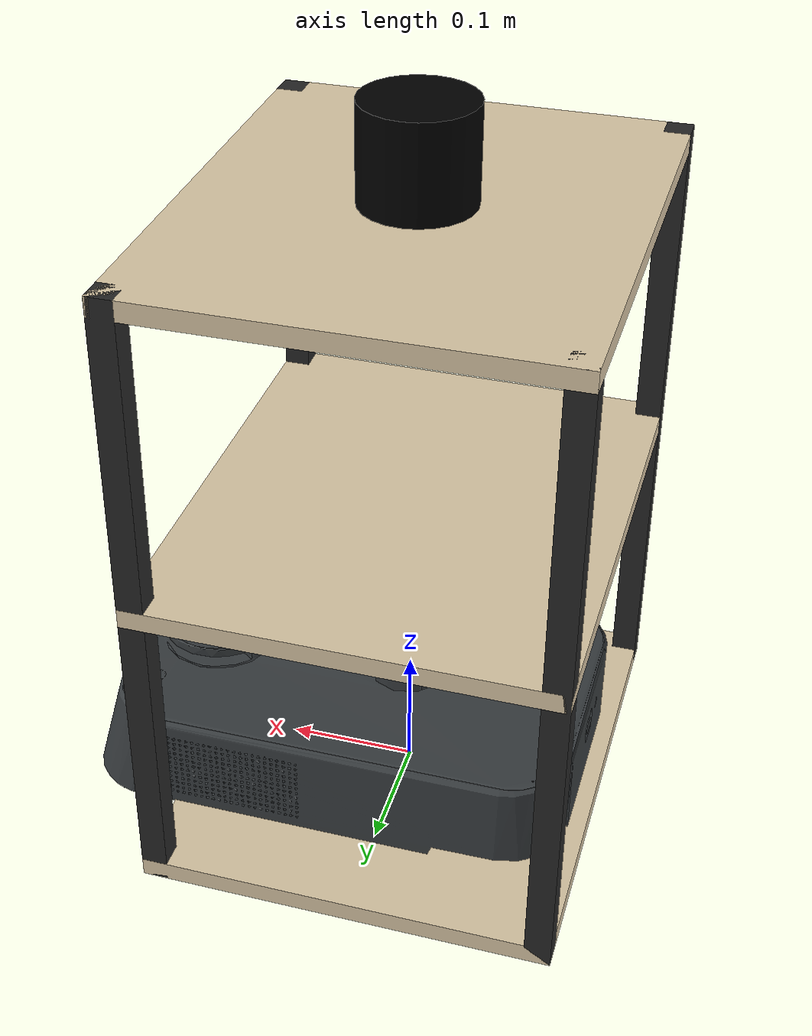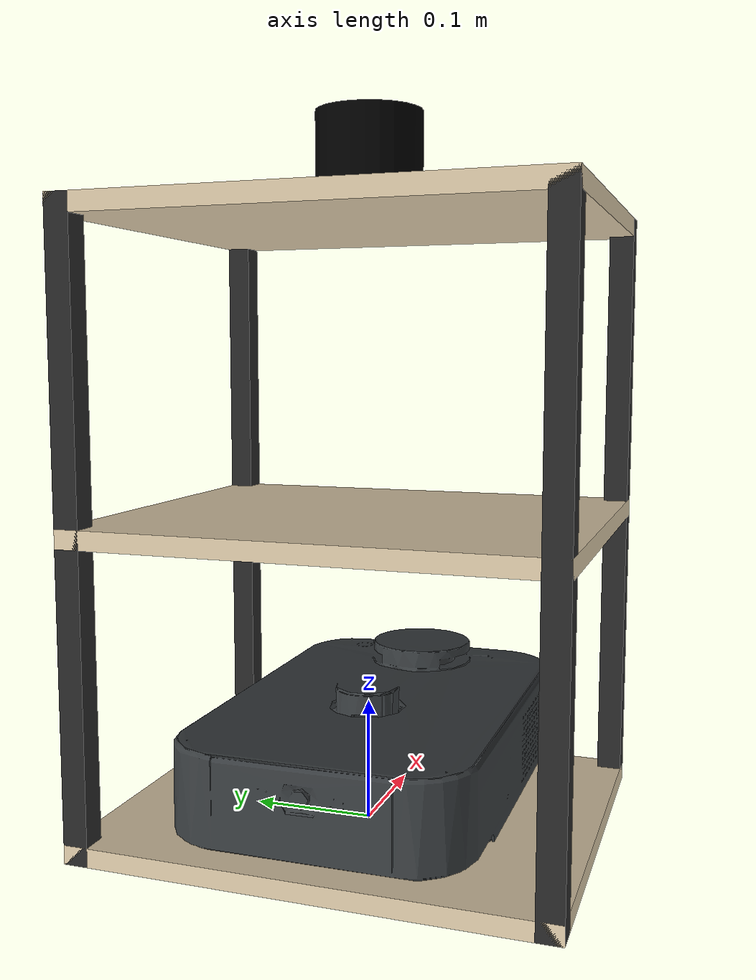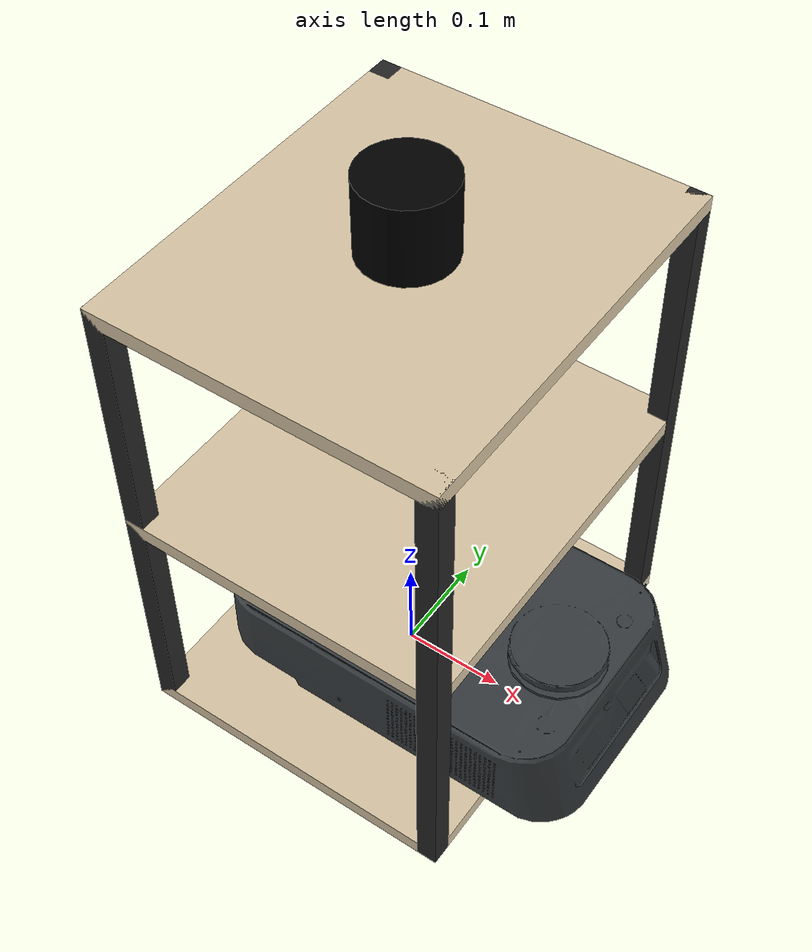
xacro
<?xml version="1.0"?>
<robot name="kachaka_with_shelf" xmlns:xacro="http://ros.org/wiki/xacro">

  <xacro:include filename="$(find kachaka_description)/urdf/_materials.urdf.xacro"/>
  <xacro:include filename="$(find kachaka_description)/urdf/_values.urdf.xacro"/>
  <xacro:include filename="$(find kachaka_description)/urdf/_kachaka.urdf.xacro"/>
  <xacro:include filename="$(find kachaka_description)/urdf/_shelf_3tier.urdf.xacro"/>
  <xacro:include filename="$(find kachaka_autoware_description)/urdf/_ouster_os1.urdf.xacro"/>

  <link name="base_footprint"/>

  <xacro:kachaka_robot parent="base_footprint">
    <origin xyz="0 0 0" rpy="0 0 0"/>
  </xacro:kachaka_robot>

  <!--
    docking_link is Kachaka's docking lift mechanism (prismatic joint).
    Attaching the shelf here makes it follow the lift (up to ~0.012 m),
    matching real hardware behavior.
  -->
  <xacro:shelf_3tier parent="docking_link"/>

  <!-- Mount the Ouster OS-1 at the shelf top center; override origin with values measured in M0 Task 4. -->
  <xacro:ouster_os1 parent="shelf_top">
    <origin xyz="0 0 0" rpy="0 0 0"/>
  </xacro:ouster_os1>

</robot>

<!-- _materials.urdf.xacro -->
<robot xmlns:xacro="http://ros.org/wiki/xacro">
  <material name="body">
    <color rgba="0.2175 0.2355 0.246 1.0" />
  </material>
  <material name="tire">
    <color rgba="0.3 0.3 0.3 1.0" />
  </material>
  <material name="black">
    <color rgba="0.0 0.0 0.0 1.0" />
  </material>
  <material name="shelf_board">
    <color rgba="0.85 0.78 0.65 1.0" />
  </material>
  <material name="shelf_post">
    <color rgba="0.15 0.15 0.15 1.0" />
  </material>
</robot>

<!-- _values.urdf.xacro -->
<robot xmlns:xacro="http://ros.org/wiki/xacro">
    <xacro:property name="PI"
                    value="3.141592653589793" />
</robot>

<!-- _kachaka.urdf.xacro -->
<robot name="kachaka_robot" xmlns:xacro="http://ros.org/wiki/xacro">
  <xacro:macro name="kachaka_robot" params="parent *origin">
    <!-- base_footprint -->
    <joint name="base_footprint_joint"
          type="fixed">
      <parent link="${parent}" />
      <child link="base_link" />
      <xacro:insert_block name="origin" />
    </joint>
    <link name="base_link">
      <inertial>
        <mass value="10.0" />
        <origin xyz="0.0435 0.0 0.0475"
                rpy="0 0 0" />
        <inertia ixx="${1/12*10*(0.095**2+0.240**2)}" ixy="0" ixz="0"
                iyy="${1/12*10*(0.095**2+0.387**2)}" iyz="0"
                izz="${1/12*10*(0.387**2+0.240**2)}" />
      </inertial>
      <visual>
        <origin rpy="0 0 0" xyz="-0.150 -0.120 0.0"/>
        <geometry>
          <mesh filename="package://kachaka_description/meshes/kachaka/body.stl"/>
        </geometry>
        <material name="body" />
      </visual>
      <collision>
        <origin xyz="0.0435 0.0 0.0475"
                rpy="0 0 0" />
        <geometry>
          <box size="0.387 0.240 0.095" />
        </geometry>
        <material name="body" />
      </collision>
    </link>

    <!-- Wheel(right) -->
    <joint name="base_r_drive_wheel_joint"
          type="continuous">
      <parent link="base_link" />
      <child link="base_r_drive_wheel_link" />
      <origin rpy="0 0 0"
              xyz="0.0 -0.100 0.045" />
      <axis xyz="0 1 0" />
      <limit velocity="10"
            effort="100" />
    </joint>
    <link name="base_r_drive_wheel_link">
      <inertial>
        <mass value="0.2" /> <!-- TODO - Update mass value -->
        <origin xyz="0 0 0"
                rpy="${PI / 2.0} 0 0" />
        <!-- Bug - inertial rotation is not reflected in Rviz2 -->
        <!-- https://github.com/ros2/rviz/pull/1316 -->
        <inertia ixx="${1/12*0.2*(3*0.045**2+0.025**2)}" ixy="0" ixz="0"
                iyy="${1/12*0.2*(3*0.045**2+0.025**2)}" iyz="0"
                izz="${1/2*0.2*(0.045**2)}" />
      </inertial>
      <visual>
        <origin rpy="0 0 0" xyz="0 0 0"/>
        <geometry>
          <mesh filename="package://kachaka_description/meshes/kachaka/right_tire.stl" scale="1.0 1.0 1.0"/>
        </geometry>
        <material name="tire" />
      </visual>
      <collision>
        <origin xyz="0 0 0"
                rpy="${PI / 2.0} 0 0" />
        <geometry>
          <cylinder length="0.025"
                    radius="0.045" />
        </geometry>
        <material name="tire" />
      </collision>
    </link>

    <!-- Wheel(left) -->
    <joint name="base_l_drive_wheel_joint"
          type="continuous">
      <parent link="base_link" />
      <child link="base_l_drive_wheel_link" />
      <origin rpy="0 0 0"
              xyz="0.0 0.100 0.045" />
      <axis xyz="0 1 0" />
      <limit velocity="10"
            effort="100" />
    </joint>
    <link name="base_l_drive_wheel_link">
      <inertial>
        <mass value="0.2" />
        <origin xyz="0 0 0"
                rpy="${PI / 2.0} 0 0" />
        <!-- Bug - inertial rotation is not reflected in Rviz2 -->
        <!-- https://github.com/ros2/rviz/pull/1316 -->
        <inertia ixx="${1/12*0.2*(3*0.045**2+0.025**2)}" ixy="0" ixz="0"
                iyy="${1/12*0.2*(3*0.045**2+0.025**2)}" iyz="0"
                izz="${1/2*0.2*(0.045**2)}" />
      </inertial>
      <visual>
        <origin xyz="0 0 0"
                rpy="0 0 0" />
        <geometry>
          <mesh filename="package://kachaka_description/meshes/kachaka/left_tire.stl" scale="1.0 1.0 1.0"/>
        </geometry>
        <material name="tire" />
      </visual>
      <collision>
        <origin xyz="0 0 0"
                rpy="${PI / 2.0} 0 0" />
        <geometry>
          <cylinder length="0.025"
                    radius="0.045" />
        </geometry>
        <material name="tire" />
      </collision>
    </link>

    <!-- 2D LiDAR -->
    <joint name="lidar_joint"
          type="fixed">
      <parent link="base_link" />
      <child link="laser_link" />
      <origin rpy="0 0 ${PI / 2.0}"
              xyz="0.156 0 0.1049" />
    </joint>
    <link name="laser_link" />

    <!-- Camera(front) -->
    <joint name="camera_front_joint"
          type="fixed">
      <parent link="base_link" />
      <child link="camera_front_link" />
      <origin rpy="-${PI / 2.0} 0 -${PI / 2.0}"
              xyz="${0.2196 - 0.01} 0 0.070" />
    </joint>
    <link name="camera_front_link" />

    <!-- Camera(back) -->
    <joint name="camera_back_joint"
          type="fixed">
      <parent link="base_link" />
      <child link="camera_back_link" />
      <origin rpy="-${PI / 2.0} 0 ${PI / 2.0}"
              xyz="${-0.150 + 0.01} 0 0.070" />
    </joint>
    <link name="camera_back_link" />

    <!-- ToF camera -->
    <joint name="tof_joint"
          type="fixed">
      <parent link="base_link" />
      <child link="tof_link" />
      <origin rpy="-${PI / 4.0} 0 -${PI / 2.0}"
              xyz="0.221 0.0 0.0418" />
    </joint>
    <link name="tof_link" />

    <!-- Docking -->
    <joint name="docking_joint"
          type="prismatic">
      <parent link="base_link" />
      <child link="docking_link" />
      <axis xyz="0 0 1.0" />
      <origin rpy="0 0 0"
              xyz="0 0 0" />
      <limit lower="0.0"
            upper="0.012"
            effort="1.0"
            velocity="1.0" />
    </joint>
    <link name="docking_link">
      <inertial>
        <mass value="0.2" /> <!-- TODO - Update mass value -->
        <origin xyz="0 0 0.1075"
                rpy="0 0 0" />
        <inertia ixx="${1/12*0.2*(3*0.025**2+0.015**2)}" ixy="0" ixz="0"
                 iyy="${1/12*0.2*(3*0.025**2+0.015**2)}" iyz="0"
                 izz="${1/2*0.2*(0.025**2)}" />
      </inertial>
      <visual>
        <geometry>
          <mesh filename="package://kachaka_description/meshes/kachaka/solenoid.stl"
                scale="1.0 1.0 1.0" />
        </geometry>
        <material name="body" />
      </visual>
      <collision>
        <origin xyz="0 0 0.1075"
                rpy="0 0 0" />
        <geometry>
          <cylinder length="0.015"
                    radius="0.025" />
        </geometry>
        <material name="body" />
      </collision>
    </link>

    <!-- IMU -->
    <joint name="imu_joint"
          type="fixed">
      <parent link="base_link" />
      <child link="imu_link" />
      <origin rpy="0 0 0"
              xyz="0.0756 -0.0655 0.05146" />
    </joint>
    <link name="imu_link" />
  </xacro:macro>
</robot>

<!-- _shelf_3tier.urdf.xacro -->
<robot name="shelf_3tier" xmlns:xacro="http://ros.org/wiki/xacro">
  <xacro:macro name="shelf_3tier"
               params="parent
                       shelf_name:=shelf
                       depth:=0.32
                       width:=0.38
                       height:=0.50
                       board_thickness:=0.015
                       post_size:=0.020">

    <link name="${shelf_name}_base_link"/>
    <joint name="${shelf_name}_base_joint" type="fixed">
      <parent link="${parent}"/>
      <child link="${shelf_name}_base_link"/>
      <origin xyz="0 0 0" rpy="0 0 0"/>
    </joint>

    <xacro:macro name="_shelf_board" params="board_name z">
      <link name="${shelf_name}_${board_name}_board">
        <visual>
          <origin xyz="0 0 ${z + board_thickness/2.0}" rpy="0 0 0"/>
          <geometry>
            <box size="${depth} ${width} ${board_thickness}"/>
          </geometry>
          <material name="shelf_board"/>
        </visual>
        <collision>
          <origin xyz="0 0 ${z + board_thickness/2.0}" rpy="0 0 0"/>
          <geometry>
            <box size="${depth} ${width} ${board_thickness}"/>
          </geometry>
        </collision>
      </link>
      <joint name="${shelf_name}_${board_name}_board_joint" type="fixed">
        <parent link="${shelf_name}_base_link"/>
        <child link="${shelf_name}_${board_name}_board"/>
        <origin xyz="0 0 0" rpy="0 0 0"/>
      </joint>
    </xacro:macro>

    <xacro:_shelf_board board_name="bottom" z="0"/>
    <xacro:_shelf_board board_name="middle" z="${(height - board_thickness) / 2.0}"/>
    <xacro:_shelf_board board_name="top"    z="${height - board_thickness}"/>

    <xacro:macro name="_shelf_post" params="post_name x y">
      <link name="${shelf_name}_${post_name}_post">
        <visual>
          <origin xyz="${x} ${y} ${height/2.0}" rpy="0 0 0"/>
          <geometry>
            <box size="${post_size} ${post_size} ${height}"/>
          </geometry>
          <material name="shelf_post"/>
        </visual>
        <collision>
          <origin xyz="${x} ${y} ${height/2.0}" rpy="0 0 0"/>
          <geometry>
            <box size="${post_size} ${post_size} ${height}"/>
          </geometry>
        </collision>
      </link>
      <joint name="${shelf_name}_${post_name}_post_joint" type="fixed">
        <parent link="${shelf_name}_base_link"/>
        <child link="${shelf_name}_${post_name}_post"/>
        <origin xyz="0 0 0" rpy="0 0 0"/>
      </joint>
    </xacro:macro>

    <xacro:_shelf_post post_name="fl" x="${ (depth - post_size)/2.0}" y="${ (width - post_size)/2.0}"/>
    <xacro:_shelf_post post_name="fr" x="${ (depth - post_size)/2.0}" y="${-(width - post_size)/2.0}"/>
    <xacro:_shelf_post post_name="bl" x="${-(depth - post_size)/2.0}" y="${ (width - post_size)/2.0}"/>
    <xacro:_shelf_post post_name="br" x="${-(depth - post_size)/2.0}" y="${-(width - post_size)/2.0}"/>

    <link name="${shelf_name}_top"/>
    <joint name="${shelf_name}_top_joint" type="fixed">
      <parent link="${shelf_name}_base_link"/>
      <child link="${shelf_name}_top"/>
      <origin xyz="0 0 ${height}" rpy="0 0 0"/>
    </joint>
  </xacro:macro>
</robot>

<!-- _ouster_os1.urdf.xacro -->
<robot name="ouster_os1" xmlns:xacro="http://ros.org/wiki/xacro">
  <!--
    Ouster OS-1 (128) 簡易モデル。
    body: 円筒（直径 85mm、高さ 73.5mm）
    os1_lidar / os1_imu フレームのオフセットは Ouster ICD の値。
    公式 ouster_description を入れたら置き換え可能。
  -->
  <xacro:macro name="ouster_os1"
               params="parent
                       name:=os1
                       *origin
                       body_radius:=0.0425
                       body_height:=0.0735
                       lidar_to_sensor_z:=0.03618
                       imu_offset_x:=0.006253
                       imu_offset_y:=-0.011775
                       imu_offset_z:=0.007645">

    <link name="${name}_sensor">
      <visual>
        <origin xyz="0 0 ${body_height/2.0}" rpy="0 0 0"/>
        <geometry>
          <cylinder length="${body_height}" radius="${body_radius}"/>
        </geometry>
        <material name="black"/>
      </visual>
      <collision>
        <origin xyz="0 0 ${body_height/2.0}" rpy="0 0 0"/>
        <geometry>
          <cylinder length="${body_height}" radius="${body_radius}"/>
        </geometry>
      </collision>
    </link>
    <joint name="${name}_mount_joint" type="fixed">
      <parent link="${parent}"/>
      <child link="${name}_sensor"/>
      <xacro:insert_block name="origin"/>
    </joint>

    <link name="${name}_lidar"/>
    <joint name="${name}_lidar_joint" type="fixed">
      <parent link="${name}_sensor"/>
      <child link="${name}_lidar"/>
      <origin xyz="0 0 ${lidar_to_sensor_z}" rpy="0 0 0"/>
    </joint>

    <link name="${name}_imu"/>
    <joint name="${name}_imu_joint" type="fixed">
      <parent link="${name}_sensor"/>
      <child link="${name}_imu"/>
      <origin xyz="${imu_offset_x} ${imu_offset_y} ${imu_offset_z}" rpy="0 0 0"/>
    </joint>
  </xacro:macro>
</robot>
